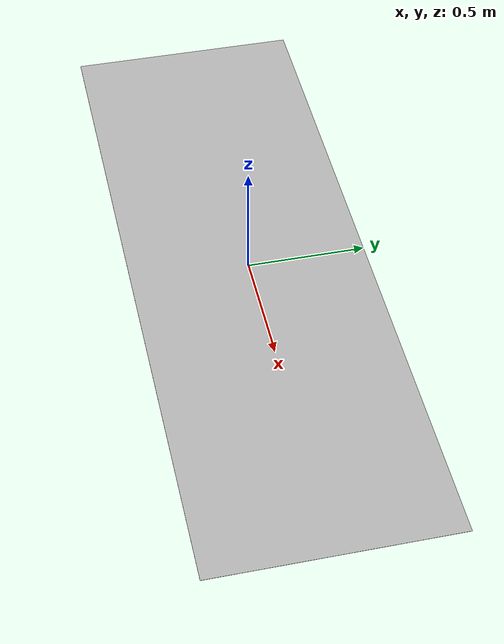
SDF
<?xml version="1.0" ?>
<sdf version="1.6">
  <model name="course_crossLane">
    <static>true</static>
    <link name="course_crossLane_link">
      <collision name="course_crossLane_collision">
        <geometry>
          <plane>
            <normal>0 0 1</normal>
            <size>3 1</size>
          </plane>
        </geometry>
        <surface>
          <friction>
            <ode>
              <mu>100</mu>
              <mu2>50</mu2>
            </ode>
          </friction>
        </surface>
      </collision>
      <visual name="course_crossLane_visual">
        <cast_shadows>false</cast_shadows>
        <geometry>
	        <plane>
            <normal>0 0 1</normal>
            <size>3 1</size>
          </plane>
        </geometry>
	      <material>
          <script>
            <uri>model://turtlebot3_autorace/course_crossLnae/materials/scripts</uri>
            <uri>model://turtlebot3_autorace/course_crossLnae/materials/textures</uri>
            <name>course_Lane</name>
          </script>
        </material>
      </visual>
    </link>
  </model>
</sdf>
